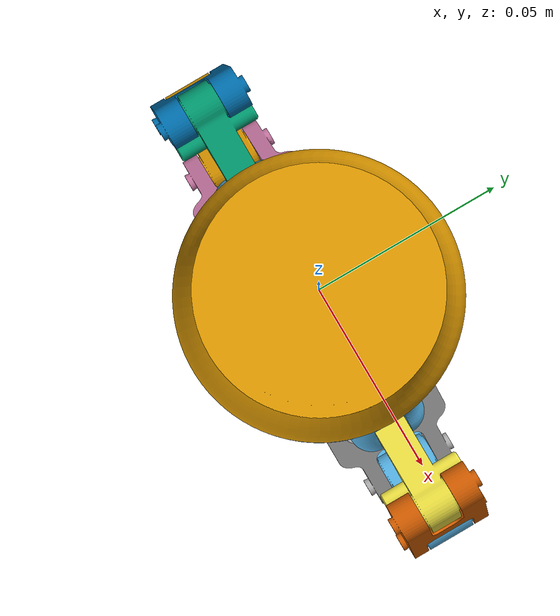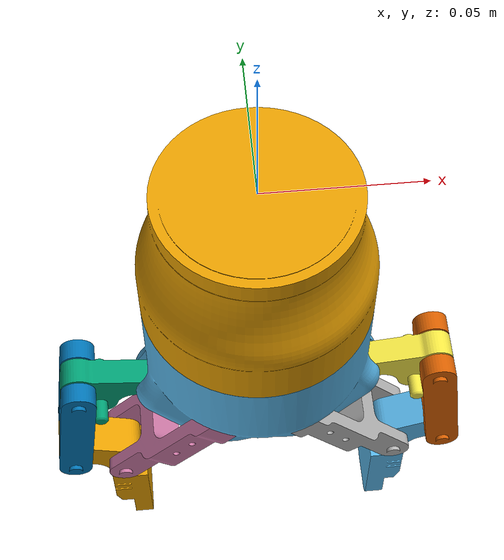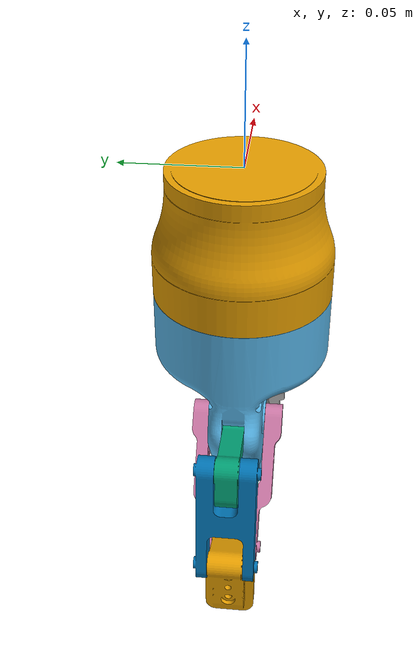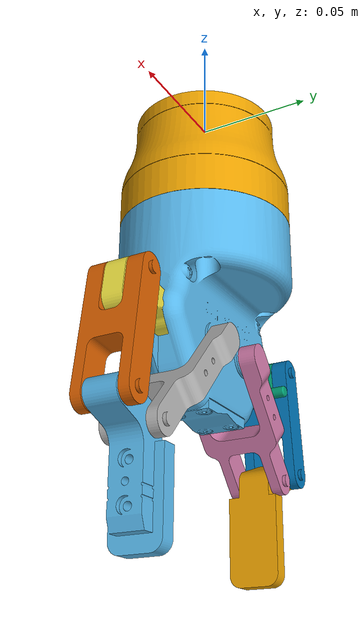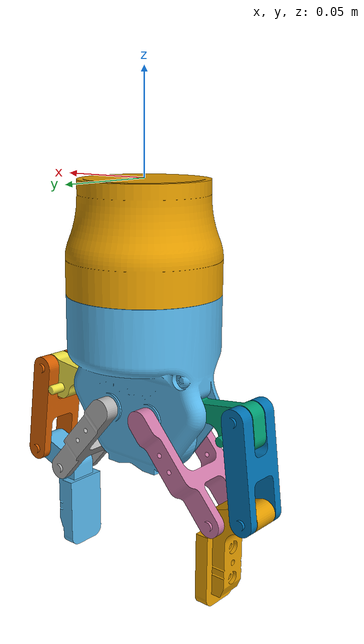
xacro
<?xml version="1.0"?>

<robot name="robotiq85_gripper" xmlns:xacro="http://ros.org/wiki/xacro">

  <xacro:include filename="$(find movo_description)/urdf/manipulation/robotiq/robotiq_85_gripper.urdf.xacro" />

  <xacro:robotiq_85_gripper prefix="" parent="" >
    <origin xyz="-0.16 0 0" rpy="${-M_PI} ${M_PI/2} 0"/>
  </xacro:robotiq_85_gripper>

</robot>

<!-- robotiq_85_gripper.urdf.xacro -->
<robot name="robotiq_85_gripper" xmlns:xacro="http://ros.org/wiki/xacro" xmlns:drake="http://drake.mit.edu">
    <xacro:include filename="$(find movo_description)/urdf/manipulation/robotiq/robotiq_85_gripper.transmission.xacro" />
    <xacro:property name="M_PI" value="3.14159"/>
    <xacro:if value="$(optenv REPLACE_MIMIC false)">
      <xacro:property name="revolute_or_fixed_1" value="fixed"/>
    </xacro:if>
    <xacro:unless value="$(optenv REPLACE_MIMIC false)">
      <xacro:property name="revolute_or_fixed_1" value="revolute"/>
    </xacro:unless>
    <xacro:if value="$(optenv WELD_FINGERS false)">
      <xacro:property name="revolute_or_fixed" value="fixed"/>
    </xacro:if>
    <xacro:unless value="$(optenv WELD_FINGERS false)">
      <xacro:property name="revolute_or_fixed" value="${revolute_or_fixed_1}"/>
    </xacro:unless>

    <xacro:macro name="robotiq_85_gripper" params="prefix parent *origin">

        <xacro:if value="${parent != ''}">
          <joint name="${prefix}kinova_robotiq_coupler_joint" type="fixed">
              <parent link="${parent}"/>
              <child link="${prefix}robotiq_coupler_link"/>
              <xacro:insert_block name="origin"/>
          </joint>
        </xacro:if>

        <link name="${prefix}robotiq_coupler_link">
            <visual>
                <geometry>
                    <mesh filename="package://movo_description/meshes/manipulation/robotiq/visual/kinova_robotiq_coupler.obj"/>
                </geometry>
            </visual>
            <collision>
                <geometry>
                    <mesh filename="package://movo_description/meshes/manipulation/robotiq/collision/kinova_robotiq_coupler.obj"/>
                </geometry>
            </collision>
            <inertial>
                <mass value="0.1" />
                <origin xyz="0.0 0.0 0.0" />
                <inertia ixx = "0.000001" ixy = "0.000000" ixz = "0.000000"
                         iyx = "0.000000" iyy = "0.000001" iyz = "0.000000"
                         izx = "0.000000" izy = "0.000000" izz = "0.000001" />
            </inertial>
        </link>

        <gazebo reference="${prefix}robotiq_coupler_link">
            <implicitSpringDamper>1</implicitSpringDamper>
            <mu1>100000</mu1>
            <mu2>100000</mu2>
            <kp>100000000.0</kp>
            <kd>1.0</kd>
        </gazebo>

        <joint name="${prefix}gripper_base_joint" type="fixed">
            <parent link="${prefix}robotiq_coupler_link"/>
            <child link="${prefix}gripper_base_link"/>
            <origin rpy="${-M_PI/2} ${M_PI/2} 0.0" xyz="0 0 -0.05105"/>
        </joint>

        <link name="${prefix}gripper_base_link">
            <visual>
                <geometry>
                    <mesh filename="package://movo_description/meshes/manipulation/robotiq/visual/robotiq_85_base_link.obj"/>
                </geometry>
            </visual>
            <collision>
                <geometry>
                    <mesh filename="package://movo_description/meshes/manipulation/robotiq/collision/robotiq_85_base_link.obj"/>
                </geometry>
            </collision>
            <inertial>
                <mass value="0.636951" />
                <origin xyz="0.0 0.0 0.0" />
                <inertia ixx = "0.000380" ixy = "0.000000" ixz = "0.000000"
                         iyx = "0.000000" iyy = "0.001110" iyz = "0.000000"
                         izx = "0.000000" izy = "0.000000" izz = "0.001171" />
            </inertial>
        </link>

        <gazebo reference="${prefix}gripper_base_link">
            <implicitSpringDamper>1</implicitSpringDamper>
            <mu1>100000</mu1>
            <mu2>100000</mu2>
            <kp>100000000.0</kp>
            <kd>1.0</kd>
        </gazebo>

        <joint name="${prefix}gripper_finger1_joint" type="${revolute_or_fixed}">
            <parent link="${prefix}gripper_base_link"/>
            <child link="${prefix}gripper_finger1_knuckle_link"/>
            <axis xyz="0 0 1"/>
            <origin rpy="${M_PI} 0.0 0.0" xyz="0.05490451627 0.03060114443 0.0"/>
            <limit lower="0.0" upper="0.804" velocity="2.0" effort="1000"/>
        </joint>

        <joint name="${prefix}gripper_finger2_joint" type="${revolute_or_fixed}">
            <parent link="${prefix}gripper_base_link"/>
            <child link="${prefix}gripper_finger2_knuckle_link"/>
            <axis xyz="0 0 1"/>
            <origin rpy="0.0 0.0 0.0" xyz="0.05490451627 -0.03060114443 0.0"/>
            <limit lower="-3.14" upper="3.14" velocity="100.0" effort="1000"/>
            <xacro:unless value="$(optenv REPLACE_MIMIC false)">
            <xacro:unless value="$(optenv WELD_FINGERS false)">
              <mimic joint="${prefix}gripper_finger1_joint"/>
            </xacro:unless>
            </xacro:unless>
        </joint>

        <link name="${prefix}gripper_finger1_knuckle_link">
            <visual>
                <geometry>
                    <mesh filename="package://movo_description/meshes/manipulation/robotiq/visual/robotiq_85_knuckle_link.obj"/>
                </geometry>
            </visual>
            <collision>
                <geometry>
                    <mesh filename="package://movo_description/meshes/manipulation/robotiq/collision/robotiq_85_knuckle_link.obj"/>
                </geometry>
            </collision>
            <inertial>
                <mass value="0.018491" />
                <origin xyz="0.0 0.0 0.0" />
                <inertia ixx = "0.000009" ixy = "-0.000001" ixz = "0.000000"
                         iyx = "-0.000001" iyy = "0.000001" iyz = "0.000000"
                         izx = "0.000000" izy = "0.000000" izz = "0.000010" />
            </inertial>
        </link>

        <gazebo reference="${prefix}gripper_finger1_knuckle_link">
            <implicitSpringDamper>1</implicitSpringDamper>
            <mu1>100000</mu1>
            <mu2>100000</mu2>
            <kp>100000000.0</kp>
            <kd>1.0</kd>
        </gazebo>

        <link name="${prefix}gripper_finger2_knuckle_link">
            <visual>
                <geometry>
                    <mesh filename="package://movo_description/meshes/manipulation/robotiq/visual/robotiq_85_knuckle_link.obj"/>
                </geometry>
            </visual>
            <collision>
                <geometry>
                    <mesh filename="package://movo_description/meshes/manipulation/robotiq/collision/robotiq_85_knuckle_link.obj"/>
                </geometry>
            </collision>
            <inertial>
                <mass value="0.018491" />
                <origin xyz="0.0 0.0 0.0" />
                <inertia ixx = "0.000009" ixy = "-0.000001" ixz = "0.000000"
                         iyx = "-0.000001" iyy = "0.000001" iyz = "0.000000"
                         izx = "0.000000" izy = "0.000000" izz = "0.000010" />
            </inertial>
        </link>

        <gazebo reference="${prefix}gripper_finger2_knuckle_link">
            <implicitSpringDamper>1</implicitSpringDamper>
            <mu1>100000</mu1>
            <mu2>100000</mu2>
            <kp>100000000.0</kp>
            <kd>1.0</kd>
        </gazebo>

        <joint name="${prefix}gripper_finger1_finger_joint" type="fixed">
            <parent link="${prefix}gripper_finger1_knuckle_link"/>
            <child link="${prefix}gripper_finger1_finger_link"/>
            <origin xyz="-0.00408552455 -0.03148604435 0.0" rpy="0 0 0" />
        </joint>

        <joint name="${prefix}gripper_finger2_finger_joint" type="fixed">
            <parent link="${prefix}gripper_finger2_knuckle_link"/>
            <child link="${prefix}gripper_finger2_finger_link"/>
            <origin xyz="-0.00408552455 -0.03148604435 0.0" rpy="0 0 0" />
        </joint>

        <link name="${prefix}gripper_finger1_finger_link">
            <visual>
                <geometry>
                    <mesh filename="package://movo_description/meshes/manipulation/robotiq/visual/robotiq_85_finger_link.obj"/>
                </geometry>
            </visual>
            <collision>
                <geometry>
                    <mesh filename="package://movo_description/meshes/manipulation/robotiq/collision/robotiq_85_finger_link.obj"/>
                </geometry>
            </collision>
            <inertial>
                <mass value="0.027309" />
                <origin xyz="0.0 0.0 0.0" />
                <inertia ixx = "0.000003" ixy = "-0.000002" ixz = "0.000000"
                         iyx = "-0.000002" iyy = "0.000021" iyz = "0.000000"
                         izx = "0.000000" izy = "0.000000" izz = "0.000020" />
            </inertial>
        </link>

        <gazebo reference="${prefix}gripper_finger1_finger_link">
            <implicitSpringDamper>1</implicitSpringDamper>
            <mu1>100000</mu1>
            <mu2>100000</mu2>
            <kp>100000000.0</kp>
            <kd>1.0</kd>
        </gazebo>

        <link name="${prefix}gripper_finger2_finger_link">
            <visual>
                <geometry>
                    <mesh filename="package://movo_description/meshes/manipulation/robotiq/visual/robotiq_85_finger_link.obj"/>
                </geometry>
            </visual>
            <collision>
                <geometry>
                    <mesh filename="package://movo_description/meshes/manipulation/robotiq/collision/robotiq_85_finger_link.obj"/>
                </geometry>
            </collision>
            <inertial>
                <mass value="0.027309" />
                <origin xyz="0.0 0.0 0.0" />
                <inertia ixx = "0.000003" ixy = "-0.000002" ixz = "0.000000"
                         iyx = "-0.000002" iyy = "0.000021" iyz = "0.000000"
                         izx = "0.000000" izy = "0.000000" izz = "0.000020" />
            </inertial>
        </link>

        <gazebo reference="${prefix}gripper_finger2_finger_link">
            <implicitSpringDamper>1</implicitSpringDamper>
            <mu1>100000</mu1>
            <mu2>100000</mu2>
            <kp>100000000.0</kp>
            <kd>1.0</kd>
        </gazebo>

        <xacro:if value="$(optenv REPLACE_MIMIC false)">
          <joint name="${prefix}gripper_finger1_inner_knuckle_joint" type="revolute">
              <parent link="${prefix}gripper_base_link"/>
              <child link="${prefix}gripper_finger1_inner_knuckle_link"/>
              <axis xyz="0 0 1"/>
              <origin xyz="0.06142 0.0127 0" rpy="${M_PI} 0.0 0.0" />
              <limit lower="-3.14" upper="3.14" velocity="100.0" effort="0.1"/>
          </joint>
          <joint name="${prefix}gripper_finger2_inner_knuckle_joint" type="revolute">
              <parent link="${prefix}gripper_base_link"/>
              <child link="${prefix}gripper_finger2_inner_knuckle_link"/>
              <axis xyz="0 0 1"/>
              <origin xyz="0.06142 -0.0127 0" rpy="0 0 0"/>
              <limit lower="-3.14" upper="3.14" velocity="100.0" effort="0.1"/>
          </joint>

        </xacro:if>
        <xacro:unless value="$(optenv REPLACE_MIMIC false)">
        <joint name="${prefix}gripper_finger1_inner_knuckle_joint" type="${revolute_or_fixed}">
            <parent link="${prefix}gripper_base_link"/>
            <child link="${prefix}gripper_finger1_inner_knuckle_link"/>
            <axis xyz="0 0 1"/>
            <origin xyz="0.06142 0.0127 0" rpy="${M_PI} 0.0 0.0" />
            <limit lower="-3.14" upper="3.14" velocity="100.0" effort="0.1"/>
            <xacro:unless value="$(optenv REPLACE_MIMIC false)">
            <xacro:unless value="$(optenv WELD_FINGERS false)">
              <mimic joint="${prefix}gripper_finger1_joint" offset="0"/>
            </xacro:unless>
            </xacro:unless>
        </joint>
        <joint name="${prefix}gripper_finger2_inner_knuckle_joint" type="${revolute_or_fixed}">
            <parent link="${prefix}gripper_base_link"/>
            <child link="${prefix}gripper_finger2_inner_knuckle_link"/>
            <axis xyz="0 0 1"/>
            <origin xyz="0.06142 -0.0127 0" rpy="0 0 0"/>
            <limit lower="-3.14" upper="3.14" velocity="100.0" effort="0.1"/>
            <xacro:unless value="$(optenv REPLACE_MIMIC false)">
            <xacro:unless value="$(optenv WELD_FINGERS false)">
              <mimic joint="${prefix}gripper_finger1_joint" offset="0"/>
            </xacro:unless>
            </xacro:unless>
        </joint>

        </xacro:unless>

        <link name="${prefix}gripper_finger1_inner_knuckle_link">
            <visual>
                <geometry>
                    <mesh filename="package://movo_description/meshes/manipulation/robotiq/visual/robotiq_85_inner_knuckle_link.obj"/>
                </geometry>
            </visual>
            <inertial>
                <mass value="0.029951" />
                <origin xyz="0.0 0.0 0.0" />
                <inertia ixx = "0.000039" ixy = "0.000000" ixz = "0.000000"
                         iyx = "0.000000" iyy = "0.000005" iyz = "0.000000"
                         izx = "0.000000" izy = "0.000000" izz = "0.000035" />
            </inertial>
        </link>

        <gazebo reference="${prefix}gripper_finger1_inner_knuckle_link">
            <implicitSpringDamper>1</implicitSpringDamper>
            <mu1>100000</mu1>
            <mu2>100000</mu2>
            <kp>100000000.0</kp>
            <kd>1.0</kd>
        </gazebo>

        <link name="${prefix}gripper_finger2_inner_knuckle_link">
            <visual>
                <geometry>
                    <mesh filename="package://movo_description/meshes/manipulation/robotiq/visual/robotiq_85_inner_knuckle_link.obj"/>
                </geometry>
            </visual>
            <inertial>
                <mass value="0.029951" />
                <origin xyz="0.0 0.0 0.0" />
                <inertia ixx = "0.000039" ixy = "0.000000" ixz = "0.000000"
                         iyx = "0.000000" iyy = "0.000005" iyz = "0.000000"
                         izx = "0.000000" izy = "0.000000" izz = "0.000035" />
            </inertial>
        </link>

        <gazebo reference="${prefix}gripper_finger2_inner_knuckle_link">
            <implicitSpringDamper>1</implicitSpringDamper>
            <mu1>100000</mu1>
            <mu2>100000</mu2>
            <kp>100000000.0</kp>
            <kd>1.0</kd>
        </gazebo>

        <joint name="${prefix}gripper_finger1_finger_tip_joint" type="${revolute_or_fixed}">
            <parent link="${prefix}gripper_finger1_inner_knuckle_link"/>
            <child link="${prefix}gripper_finger1_finger_tip_link"/>
            <axis xyz="0 0 1"/>
            <origin xyz="0.04303959807 -0.03759940821 0.0" rpy="0.0 0.0 0.0"/>
            <limit lower="-3.14" upper="3.14" velocity="100.0" effort="0.1"/>
            <xacro:unless value="$(optenv REPLACE_MIMIC false)">
            <xacro:unless value="$(optenv WELD_FINGERS false)">
              <mimic joint="${prefix}gripper_finger1_joint" multiplier="-1"/>
            </xacro:unless>
            </xacro:unless>
        </joint>

        <joint name="${prefix}gripper_finger2_finger_tip_joint" type="${revolute_or_fixed}">
            <parent link="${prefix}gripper_finger2_inner_knuckle_link"/>
            <child link="${prefix}gripper_finger2_finger_tip_link"/>
            <axis xyz="0 0 1"/>
            <origin rpy="0.0 0.0 0.0" xyz="0.04303959807 -0.03759940821  0.0"/>
            <limit lower="-3.14" upper="3.14" velocity="100.0" effort="0.1"/>
            <xacro:unless value="$(optenv REPLACE_MIMIC false)">
            <xacro:unless value="$(optenv WELD_FINGERS false)">
              <mimic joint="${prefix}gripper_finger1_joint" multiplier="-1"/>
            </xacro:unless>
            </xacro:unless>
        </joint>

        <link name="${prefix}gripper_finger1_finger_tip_link">
            <visual>
                <geometry>
                    <mesh filename="package://movo_description/meshes/manipulation/robotiq/visual/robotiq_85_finger_tip_link.obj"/>
                </geometry>
            </visual>
            <!-- manually add spheres until hydroelastic is enabled -->
            <collision>
              <origin xyz="0.007 0.00775 0.011" />
              <geometry>
                <sphere radius="1e-7" />
              </geometry>
            </collision>
            <collision>
              <origin xyz="0.016375 0.00775 0.011" />
              <geometry>
                <sphere radius="1e-7" />
              </geometry>
            </collision>
            <collision>
              <origin xyz="0.02575 0.00775 0.011" />
              <geometry>
                <sphere radius="1e-7" />
              </geometry>
            </collision>
            <collision>
              <origin xyz="0.035125 0.00775 0.011" />
              <geometry>
                <sphere radius="1e-7" />
              </geometry>
            </collision>
            <collision>
              <origin xyz="0.0445 0.00775 0.011" />
              <geometry>
                <sphere radius="1e-7" />
              </geometry>
            </collision>
            <collision>
              <origin xyz="0.007 0.00775 -0.011" />
              <geometry>
                <sphere radius="1e-7" />
              </geometry>
            </collision>
            <collision>
              <origin xyz="0.016375 0.00775 -0.011" />
              <geometry>
                <sphere radius="1e-7" />
              </geometry>
            </collision>
            <collision>
              <origin xyz="0.02575 0.00775 -0.011" />
              <geometry>
                <sphere radius="1e-7" />
              </geometry>
            </collision>
            <collision>
              <origin xyz="0.035125 0.00775 -0.011" />
              <geometry>
                <sphere radius="1e-7" />
              </geometry>
            </collision>
            <collision>
              <origin xyz="0.0445 0.00775 -0.011" />
              <geometry>
                <sphere radius="1e-7" />
              </geometry>
            </collision>
            <inertial>
                <mass value="0.019555" />
                <origin xyz="0.0 0.0 0.0" />
                <inertia ixx = "0.000002" ixy = "0.000000" ixz = "0.000000"
                         iyx = "0.000000" iyy = "0.000005" iyz = "0.000000"
                         izx = "0.000000" izy = "0.000000" izz = "0.000006" />
            </inertial>
        </link>

        <gazebo reference="${prefix}gripper_finger1_finger_tip_link">
            <implicitSpringDamper>1</implicitSpringDamper>
            <mu1>100000</mu1>
            <mu2>100000</mu2>
            <kp>100000000.0</kp>
            <kd>1.0</kd>
        </gazebo>

        <link name="${prefix}gripper_finger2_finger_tip_link">
            <visual>
                <geometry>
                    <mesh filename="package://movo_description/meshes/manipulation/robotiq/visual/robotiq_85_finger_tip_link.obj"/>
                </geometry>
            </visual>
            <collision>
                <!-- box for finger tip computed by measuring in blender -->
                <origin xyz="0.02575 0.004375 0" />
                <geometry>
                    <box size="0.0375 0.00675 0.022" />
                </geometry>
            </collision>
            <inertial>
                <mass value="0.019555" />
                <origin xyz="0.0 0.0 0.0" />
                <inertia ixx = "0.000002" ixy = "0.000000" ixz = "0.000000"
                         iyx = "0.000000" iyy = "0.000005" iyz = "0.000000"
                         izx = "0.000000" izy = "0.000000" izz = "0.000006" />
            </inertial>
        </link>

        <gazebo reference="${prefix}gripper_finger2_finger_tip_link">
            <implicitSpringDamper>1</implicitSpringDamper>
            <mu1>100000</mu1>
            <mu2>100000</mu2>
            <kp>100000000.0</kp>
            <kd>1.0</kd>
        </gazebo>

        <xacro:robotiq_85_gripper_transmission prefix="${prefix}" />

        <xacro:if value="${parent != ''}">
        <drake:collision_filter_group name="${prefix}link_6_coupler">
          <drake:member link="${prefix}wrist_spherical_2_link" />
          <drake:member link="${prefix}robotiq_coupler_link" />
          <drake:member link="${prefix}gripper_base_link" />
          <drake:ignored_collision_filter_group name="${prefix}link_6_coupler" />
        </drake:collision_filter_group>
        </xacro:if>

        <drake:collision_filter_group name="${prefix}finger_1">
          <drake:member link="${prefix}gripper_finger1_finger_link" />
          <drake:member link="${prefix}gripper_finger1_inner_knuckle_link" />
          <drake:member link="${prefix}gripper_finger1_knuckle_link" />
          <drake:member link="${prefix}gripper_finger1_finger_tip_link" />
          <drake:ignored_collision_filter_group name="${prefix}finger_1" />
        </drake:collision_filter_group>

        <drake:collision_filter_group name="${prefix}finger_2">
          <drake:member link="${prefix}gripper_finger2_finger_link" />
          <drake:member link="${prefix}gripper_finger2_inner_knuckle_link" />
          <drake:member link="${prefix}gripper_finger2_knuckle_link" />
          <drake:member link="${prefix}gripper_finger2_finger_tip_link" />
          <drake:ignored_collision_filter_group name="${prefix}finger_2" />
        </drake:collision_filter_group>

    </xacro:macro>
</robot>
